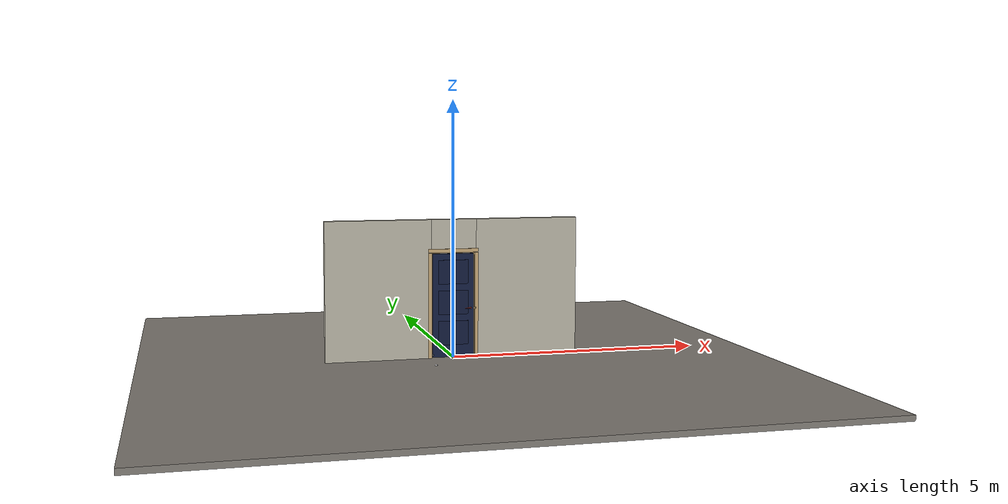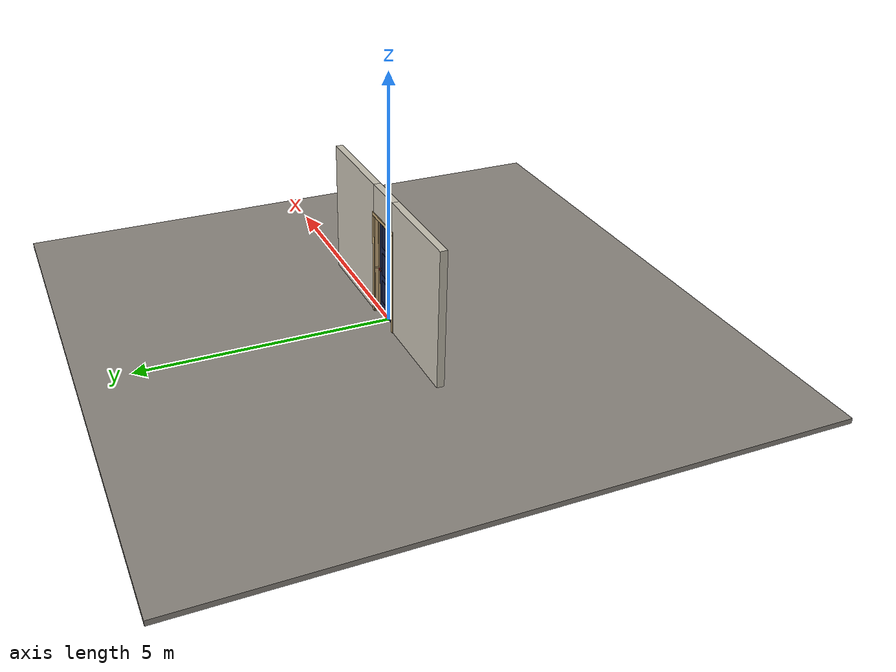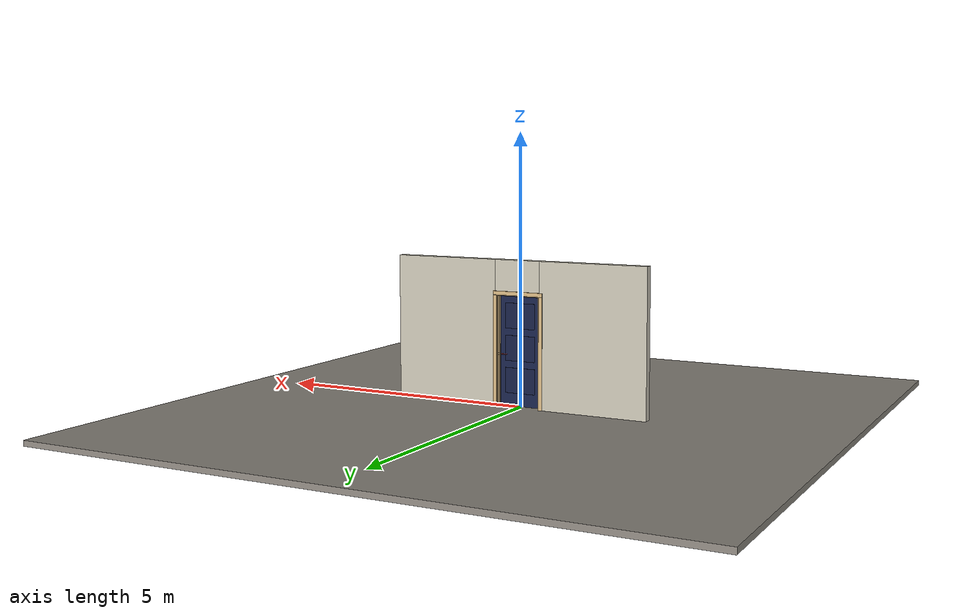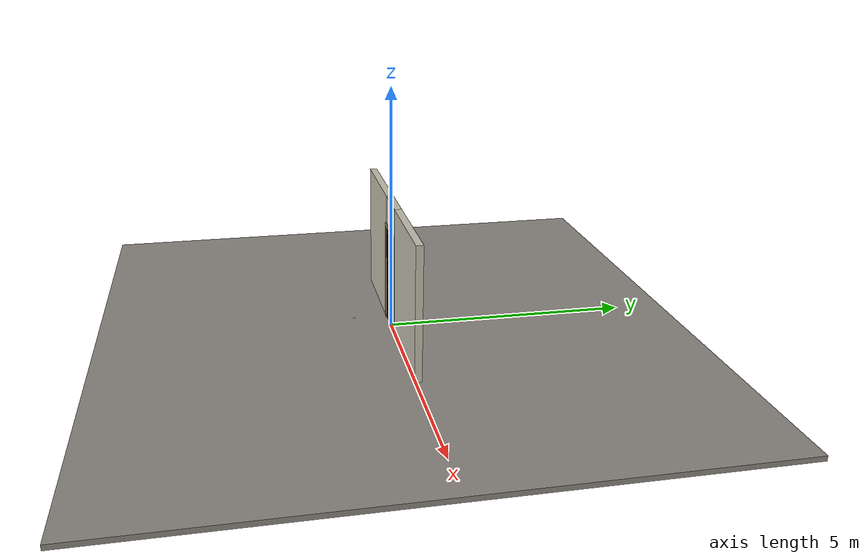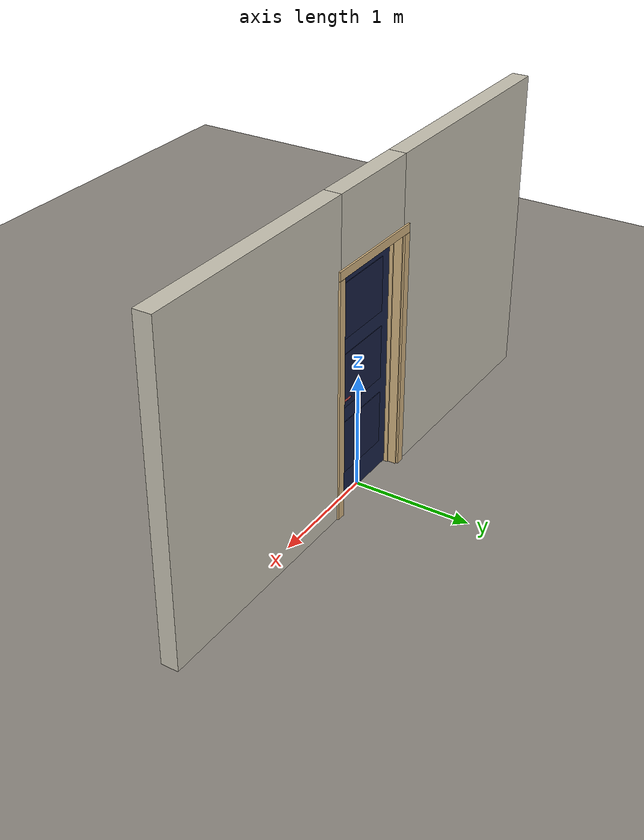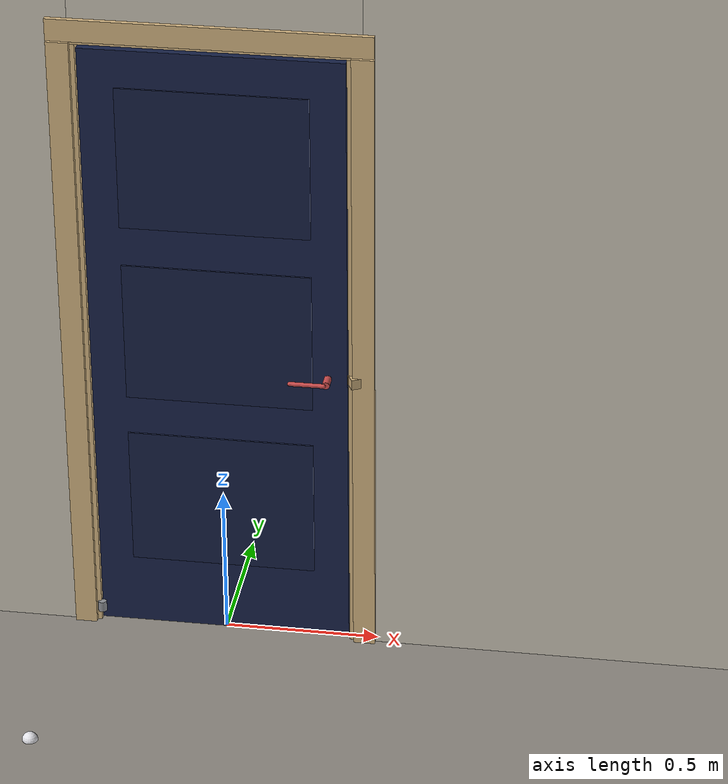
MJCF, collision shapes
<?xml version="1.0" ?>
<mujoco model="db0670_swing_single_full">
  <compiler angle="radian" meshdir="../../hardware" texturedir="../../textures" autolimits="true" inertiafromgeom="false"/>
  <option timestep="0.002" integrator="implicitfast" cone="elliptic" impratio="10" noslip_iterations="3">
    <flag multiccd="enable"/>
  </option>
  <size memory="16M"/>
  <default>
    <geom condim="4" solref="0.005 1" solimp="0.95 0.99 0.001"/>
    <joint solreflimit="0.005 1" solimplimit="0.95 0.99 0.001"/>
    <tendon solreflimit="0.005 1"/>
    <equality solref="0.002 1"/>
  </default>
  <visual>
    <headlight ambient="0.4 0.4 0.4" diffuse="0.7 0.7 0.7" specular="0.2 0.2 0.2"/>
    <quality shadowsize="4096"/>
    <map znear="0.01" zfar="60"/>
  </visual>
  <asset>
    <mesh name="hinge_c20a5829de" file="hinge_c20a5829de.obj"/>
    <mesh name="hinge_jamb_20499e6581" file="hinge_jamb_20499e6581.obj"/>
    <mesh name="lever_57205841c3" file="lever_57205841c3.obj"/>
    <material name="mat_floor" rgba="0.55 0.53 0.5 1" specular="0.2" shininess="0.15" reflectance="0"/>
    <material name="mat_wall" rgba="0.78 0.76 0.7 1" specular="0.2" shininess="0.1" reflectance="0"/>
    <material name="mat_hinge" rgba="0.55 0.56 0.58 1" specular="0.8" shininess="0.55" reflectance="0.4"/>
    <material name="mat_leaf" rgba="0.09 0.13 0.28 1" specular="0.2" shininess="0.51" reflectance="0"/>
    <material name="mat_leaf_panel" rgba="0.083 0.12 0.258 1" specular="0.2" shininess="0.51" reflectance="0"/>
    <material name="mat_op_black_matte_metal" rgba="0.05 0.05 0.05 1" specular="0.38" shininess="0.3" reflectance="0.12"/>
    <material name="mat_trim" rgba="0.85 0.66 0.3 1" specular="0.8" shininess="0.75" reflectance="0.4"/>
    <material name="mat_bolt" rgba="0.85 0.66 0.3 1" specular="0.8" shininess="0.75" reflectance="0.4"/>
    <material name="mat_frame" rgba="0.82 0.7 0.5 1" specular="0.2" shininess="0.45" reflectance="0"/>
    <material name="mat_stop" rgba="0.9 0.9 0.92 1" specular="0.8" shininess="0.9" reflectance="0.4"/>
    <texture name="skybox" type="skybox" builtin="gradient" rgb1="0.6 0.7 0.85" rgb2="0.9 0.92 0.95" width="256" height="256"/>
  </asset>
  <worldbody>
    <light name="sun" pos="1.5 -2.5 4" dir="-0.3 0.5 -0.8" directional="true" diffuse="0.8 0.8 0.8" specular="0.3 0.3 0.3" castshadow="true"/>
    <light name="fill" pos="-1.5 2.5 3" dir="0.3 -0.5 -0.7" directional="true" diffuse="0.35 0.35 0.4" castshadow="false"/>
    <camera name="robot_view" pos="0 -2.494187 1.734312" xyaxes="1 0 0 0 0.26963 0.962964" fovy="52"/>
    <camera name="far_view" pos="0 2.590187 1.734312" xyaxes="-1 0 0 0 -0.26963 0.962964" fovy="52"/>
    <camera name="iso" pos="1.932062 -2.087438 2.141063" xyaxes="0.741536 0.670913 0 -0.242917 0.268487 0.932151" fovy="46"/>
    <camera name="detail_handle" pos="0.43 -0.8725 1.245" xyaxes="0.97561 0.219512 0 -0.070934 0.315262 0.94635" fovy="38"/>
    <geom name="floor" type="box" size="6 6 0.05" pos="0 0 -0.05" material="mat_floor" group="0" contype="1" conaffinity="1" friction="0.8 0.005 0.0001" density="2400"/>
    <geom name="wall_left" type="box" size="1.0355 0.0725 1.35" pos="-1.4645 0.048 1.35" material="mat_wall" group="0" contype="1" conaffinity="1" friction="0.6 0.005 0.0001" density="800"/>
    <geom name="wall_right" type="box" size="1.0205 0.0725 1.35" pos="1.4795 0.048 1.35" material="mat_wall" group="0" contype="1" conaffinity="1" friction="0.6 0.005 0.0001" density="800"/>
    <geom name="wall_header" type="box" size="0.444 0.0725 0.303" pos="0.015 0.048 2.397" material="mat_wall" group="0" contype="1" conaffinity="1" friction="0.6 0.005 0.0001" density="800"/>
    <geom name="hinge_0_jamb" type="mesh" mesh="hinge_jamb_20499e6581" pos="-0.407 -0.0245 0.259" material="mat_hinge" group="1" contype="0" conaffinity="0" density="7850"/>
    <geom name="hinge_1_jamb" type="mesh" mesh="hinge_jamb_20499e6581" pos="-0.407 -0.0245 1.0198" material="mat_hinge" group="1" contype="0" conaffinity="0" density="7850"/>
    <geom name="hinge_2_jamb" type="mesh" mesh="hinge_jamb_20499e6581" pos="-0.407 -0.0245 1.8506" material="mat_hinge" group="1" contype="0" conaffinity="0" density="7850"/>
    <geom name="jamb_hinge" type="box" size="0.0095 0.0725 1.0225" pos="-0.4195 0.048 1.0225" material="mat_frame" group="0" contype="1" conaffinity="1" friction="0.6 0.005 0.0001" density="400"/>
    <geom name="strike_965_wall_n" type="box" size="0.0245 0.056325 0.0167" pos="0.4345 0.064175 0.965" material="mat_frame" group="0" contype="1" conaffinity="1" friction="0.6 0.005 0.0001" density="400"/>
    <geom name="strike_965_wall_p" type="box" size="0.0245 0.008 0.0167" pos="0.4345 -0.01585 0.965" material="mat_frame" group="0" contype="1" conaffinity="1" friction="0.6 0.005 0.0001" density="400"/>
    <geom name="strike_965_ramp" type="box" size="0.0245 0.01649 0.0167" pos="0.439136 -0.028673 0.965" quat="0.977148 0 0 0.212558" material="mat_frame" group="0" contype="1" conaffinity="1" friction="0.12 0.005 0.0001" density="400"/>
    <geom name="strike_965_back" type="box" size="0.01615 0.00785 0.0167" pos="0.44285 0 0.965" material="mat_frame" group="0" contype="1" conaffinity="1" friction="0.6 0.005 0.0001" density="400"/>
    <geom name="jamb_strike_0" type="box" size="0.0245 0.0725 0.47415" pos="0.4345 0.048 0.47415" material="mat_frame" group="0" contype="1" conaffinity="1" friction="0.6 0.005 0.0001" density="400"/>
    <geom name="jamb_strike_1" type="box" size="0.0245 0.0725 0.53165" pos="0.4345 0.048 1.51335" material="mat_frame" group="0" contype="1" conaffinity="1" friction="0.6 0.005 0.0001" density="400"/>
    <geom name="jamb_head" type="box" size="0.444 0.0725 0.0095" pos="0.015 0.048 2.0545" material="mat_frame" group="0" contype="1" conaffinity="1" friction="0.6 0.005 0.0001" density="400"/>
    <geom name="head_stud" type="box" size="0.444 0.0725 0.015" pos="0.015 0.048 2.079" material="mat_wall" group="0" contype="1" conaffinity="1" friction="0.6 0.005 0.0001" density="500"/>
    <geom name="stop_hinge" type="box" size="0.0055 0.016 1.0225" pos="-0.4045 0.034 1.0225" material="mat_frame" group="0" contype="1" conaffinity="1" friction="0.6 0.005 0.0001" density="400"/>
    <geom name="stop_strike" type="box" size="0.0055 0.016 1.0225" pos="0.4045 0.034 1.0225" material="mat_frame" group="0" contype="1" conaffinity="1" friction="0.6 0.005 0.0001" density="400"/>
    <geom name="stop_head" type="box" size="0.41 0.016 0.0055" pos="0 0.034 2.0395" material="mat_frame" group="0" contype="1" conaffinity="1" friction="0.6 0.005 0.0001" density="400"/>
    <geom name="casing_l_n" type="box" size="0.035 0.008 1.032" pos="-0.459 -0.0325 1.0225" material="mat_frame" group="2" contype="0" conaffinity="0" density="400"/>
    <geom name="casing_r_n" type="box" size="0.035 0.008 1.032" pos="0.459 -0.0325 1.0225" material="mat_frame" group="2" contype="0" conaffinity="0" density="400"/>
    <geom name="casing_h_n" type="box" size="0.494 0.008 0.035" pos="0 -0.0325 2.094" material="mat_frame" group="2" contype="0" conaffinity="0" density="400"/>
    <geom name="casing_l_p" type="box" size="0.035 0.008 1.032" pos="-0.459 0.1285 1.0225" material="mat_frame" group="2" contype="0" conaffinity="0" density="400"/>
    <geom name="casing_r_p" type="box" size="0.035 0.008 1.032" pos="0.459 0.1285 1.0225" material="mat_frame" group="2" contype="0" conaffinity="0" density="400"/>
    <geom name="casing_h_p" type="box" size="0.494 0.008 0.035" pos="0 0.1285 2.094" material="mat_frame" group="2" contype="0" conaffinity="0" density="400"/>
    <geom name="floor_stop_dome" type="sphere" size="0.025" pos="-0.487153 -0.711177 0" material="mat_stop" group="0" contype="1" conaffinity="1" friction="0.6 0.005 0.0001" density="7000"/>
    <site name="approach_point" pos="0 -1.5 0" quat="1 0 0 0" size="0.05" rgba="0.2 0.9 0.2 0.5" group="4"/>
    <site name="goal_point" pos="0 1.5 0" quat="1 0 0 0" size="0.05" rgba="0.2 0.9 0.2 0.5" group="4"/>
    <site name="door_plane_center" pos="0 0 1.0225" quat="1 0 0 0" size="0.02" rgba="0.2 0.9 0.2 0.5" group="4"/>
    <body name="leaf_riser" pos="-0.41 0 0">
      <inertial pos="0.003 -0.0245 0.055" mass="0.174012" quat="0.707107 0 0.707107 0" diaginertia="0.000017053 0.00002732 0.00002732"/>
      <joint name="leaf_rise" type="slide" axis="0 0 1" limited="true" range="0 0.0176" damping="1" armature="0.5"/>
      <geom name="leaf_riser_marker" type="cylinder" size="0.014 0.018" pos="0.003 -0.0245 0.055" material="mat_hinge" group="1" contype="0" conaffinity="0" density="7850"/>
      <body name="leaf" pos="0 0 0">
        <inertial pos="0.404193 -0.000222 1.020108" mass="44.021536" quat="-0.499725 0.500506 -0.499486 -0.500282" diaginertia="2.494364047 15.040736398 17.525741917"/>
        <joint name="leaf_hinge" type="hinge" axis="0 0 -1" pos="0.003 -0.0245 0" limited="true" range="0 1.658063" damping="0.210326" frictionloss="1.570535" armature="0.02"/>
        <geom name="leaf_slab" type="box" size="0.4065 0.0175 1.0108" pos="0.4095 0 1.0198" material="mat_leaf" group="0" contype="1" conaffinity="1" friction="0.4 0.005 0.0001" density="1"/>
        <geom name="leaf_panel_0_n" type="box" size="0.2965 0.003 0.233024" pos="0.4095 -0.0205 0.4844" material="mat_leaf_panel" group="1" contype="0" conaffinity="0" density="1"/>
        <geom name="leaf_panel_0_p" type="box" size="0.2965 0.003 0.233024" pos="0.4095 0.0205 0.4844" material="mat_leaf_panel" group="1" contype="0" conaffinity="0" density="1"/>
        <geom name="leaf_panel_1_n" type="box" size="0.2965 0.003 0.233024" pos="0.4095 -0.0205 1.080448" material="mat_leaf_panel" group="1" contype="0" conaffinity="0" density="1"/>
        <geom name="leaf_panel_1_p" type="box" size="0.2965 0.003 0.233024" pos="0.4095 0.0205 1.080448" material="mat_leaf_panel" group="1" contype="0" conaffinity="0" density="1"/>
        <geom name="leaf_panel_2_n" type="box" size="0.2965 0.003 0.233024" pos="0.4095 -0.0205 1.676496" material="mat_leaf_panel" group="1" contype="0" conaffinity="0" density="1"/>
        <geom name="leaf_panel_2_p" type="box" size="0.2965 0.003 0.233024" pos="0.4095 0.0205 1.676496" material="mat_leaf_panel" group="1" contype="0" conaffinity="0" density="1"/>
        <geom name="hinge_0" type="mesh" mesh="hinge_c20a5829de" pos="0.003 -0.0245 0.259" material="mat_hinge" group="1" contype="0" conaffinity="0" density="7850"/>
        <geom name="hinge_1" type="mesh" mesh="hinge_c20a5829de" pos="0.003 -0.0245 1.0198" material="mat_hinge" group="1" contype="0" conaffinity="0" density="7850"/>
        <geom name="hinge_2" type="mesh" mesh="hinge_c20a5829de" pos="0.003 -0.0245 1.8506" material="mat_hinge" group="1" contype="0" conaffinity="0" density="7850"/>
        <geom name="leaf_latch_bolt_faceplate" type="box" size="0.0006 0.01235 0.0267" pos="0.8154 0 0.965" material="mat_bolt" group="1" contype="0" conaffinity="0" density="8500"/>
        <site name="leaf_edge_mid" pos="0.816 0 1.0108" quat="1 0 0 0" size="0.02" rgba="0.2 0.9 0.2 0.5" group="4"/>
        <body name="leaf_handle" pos="0.756 0 0.965">
          <inertial pos="-0.018609 0 0" mass="0.798454" quat="0.707107 0 0 -0.707107" diaginertia="0.001003601 0.002236545 0.003135681"/>
          <joint name="leaf_handle_hinge" type="hinge" axis="0 -1 0" limited="true" range="0 0.87" damping="0.212416" frictionloss="0.042" stiffness="1" springref="-0.35" armature="0.01"/>
          <geom name="leaf_handle_spindle" type="cylinder" size="0.006 0.0255" pos="0 0 0" quat="0.707107 -0.707107 0 0" material="mat_op_black_matte_metal" group="1" contype="0" conaffinity="0" density="7850"/>
          <geom name="leaf_handle_lever_n" type="mesh" mesh="lever_57205841c3" pos="0 -0.0175 0" quat="0.707107 0.707107 0 0" material="mat_op_black_matte_metal" group="1" contype="0" conaffinity="0" density="3000"/>
          <geom name="leaf_handle_lever_col_n" type="capsule" size="0.007 0.053" pos="-0.06 -0.0725 0" quat="0.707107 0 -0.707107 0" material="mat_op_black_matte_metal" group="3" contype="1" conaffinity="1" rgba="0.8 0.3 0.3 0.25" friction="0.7 0.01 0.0001" density="3000"/>
          <geom name="leaf_handle_hub_col_n" type="cylinder" size="0.012 0.022" pos="0 -0.0475 0" quat="0.707107 -0.707107 0 0" material="mat_op_black_matte_metal" group="3" contype="1" conaffinity="1" rgba="0.8 0.3 0.3 0.25" friction="0.6 0.005 0.0001" density="3000"/>
          <geom name="leaf_handle_lever_p" type="mesh" mesh="lever_57205841c3" pos="0 0.0175 0" quat="-0.707107 0.707107 0 0" material="mat_op_black_matte_metal" group="1" contype="0" conaffinity="0" density="3000"/>
          <geom name="leaf_handle_lever_col_p" type="capsule" size="0.007 0.053" pos="-0.06 0.0725 0" quat="0.707107 0 -0.707107 0" material="mat_op_black_matte_metal" group="3" contype="1" conaffinity="1" rgba="0.8 0.3 0.3 0.25" friction="0.7 0.01 0.0001" density="3000"/>
          <geom name="leaf_handle_hub_col_p" type="cylinder" size="0.012 0.022" pos="0 0.0475 0" quat="0.707107 -0.707107 0 0" material="mat_op_black_matte_metal" group="3" contype="1" conaffinity="1" rgba="0.8 0.3 0.3 0.25" friction="0.6 0.005 0.0001" density="3000"/>
          <site name="leaf_handle_grip_n" pos="-0.096 -0.0725 0" quat="1 0 0 0" size="0.012" rgba="0.2 0.9 0.2 0.5" group="4"/>
          <site name="leaf_handle_grip_p" pos="-0.096 0.0725 0" quat="1 0 0 0" size="0.012" rgba="0.2 0.9 0.2 0.5" group="4"/>
        </body>
        <body name="leaf_latch_bolt" pos="0.816 0 0.965">
          <inertial pos="-0.00865 0 0" mass="0.041419" quat="0.92388 -0.382683 0 0" diaginertia="0.000000798 0.000005598 0.000005598"/>
          <joint name="leaf_latch_bolt_slide" type="slide" axis="-1 0 0" limited="true" range="0 0.0127" damping="2" frictionloss="0.3" stiffness="300" springref="-0.008333" armature="0.1"/>
          <geom name="leaf_latch_bolt_capsule" type="capsule" size="0.00635 0.015" pos="-0.00865 0 0" quat="0.707107 0 0.707107 0" material="mat_bolt" group="0" contype="1" conaffinity="1" friction="0.2 0.005 0.0001" density="8500"/>
        </body>
      </body>
    </body>
  </worldbody>
  <tendon>
    <fixed name="leaf_latch_bolt_coupling" limited="true" range="0 10">
      <joint joint="leaf_latch_bolt_slide" coef="1"/>
      <joint joint="leaf_handle_hinge" coef="-0.015679"/>
    </fixed>
  </tendon>
  <equality>
    <joint name="leaf_rise_couple" joint1="leaf_rise" joint2="leaf_hinge" polycoef="0 0.005093 0 0 0" active="true"/>
  </equality>
  <sensor>
    <jointpos name="leaf_hinge_pos" joint="leaf_hinge"/>
    <jointvel name="leaf_hinge_vel" joint="leaf_hinge"/>
    <jointpos name="leaf_handle_hinge_pos" joint="leaf_handle_hinge"/>
    <jointvel name="leaf_handle_hinge_vel" joint="leaf_handle_hinge"/>
    <jointpos name="leaf_latch_bolt_slide_pos" joint="leaf_latch_bolt_slide"/>
    <jointvel name="leaf_latch_bolt_slide_vel" joint="leaf_latch_bolt_slide"/>
  </sensor>
</mujoco>
